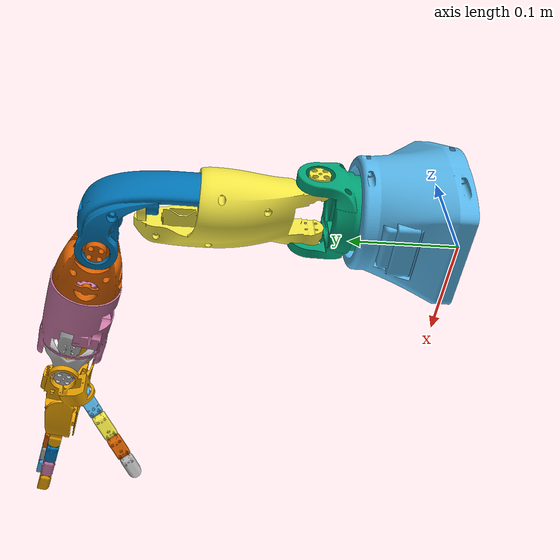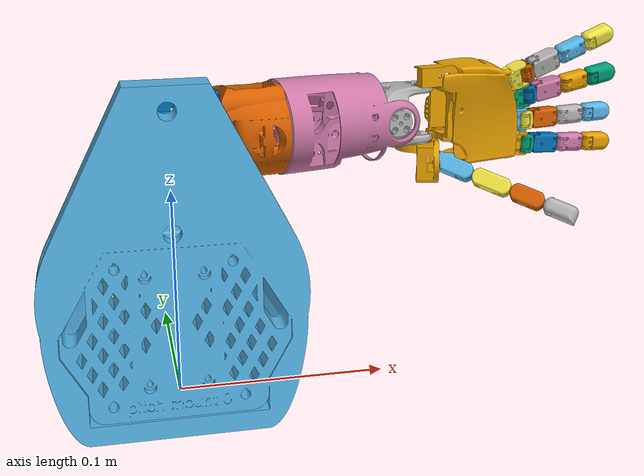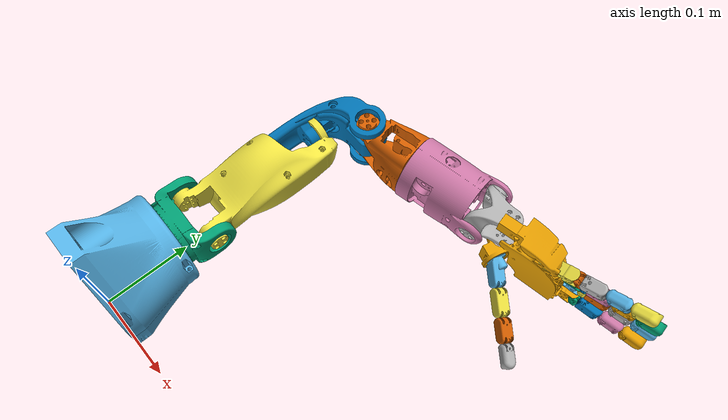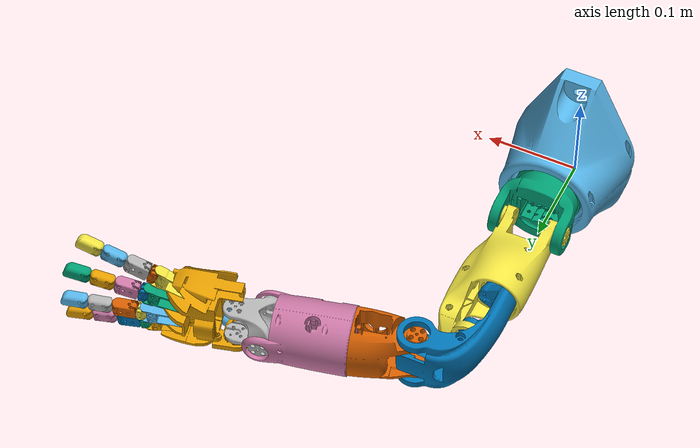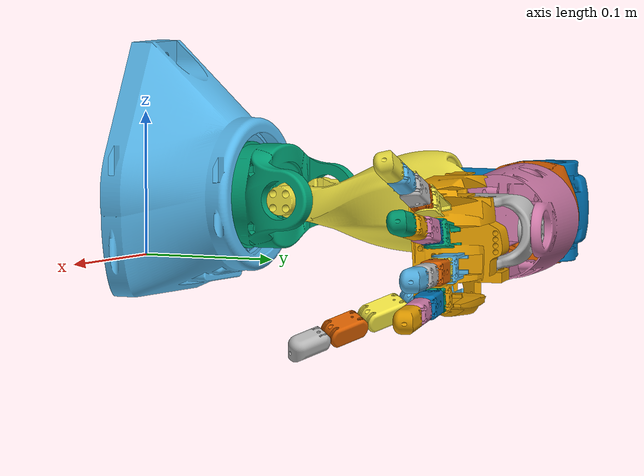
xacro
<?xml version="1.0"?>
<robot name="hopejr_right_arm_robot" xmlns:xacro="http://www.ros.org/wiki/xacro">
    <xacro:include filename="$(find hopejr_arm_description)/urdf/hopejr_arm.urdf.xacro"/>
    <xacro:include filename="$(find hopejr_hand_description)/urdf/hopejr_hand.urdf.xacro"/>

    <xacro:property name="prefix" value="hand_"/>
    <xacro:hopejr_hand_macro
        prefix="${prefix}"
        parent_link="forearm"
        scale="0.1"
    />

    <joint name="wrist_yaw" type="revolute">
        <parent link="forearm"/>
        <child link="${prefix}base_link"/>
        <origin xyz="0 0.00021 0.0917" rpy="0 ${-pi/2} 0"/>
        <axis xyz="0 0 1"/>
        <limit effort="10" velocity="1.0" lower="${-pi/18}" upper="${pi/18}" />
    </joint>
</robot>

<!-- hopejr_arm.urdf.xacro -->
<robot name="hopejr_arm" xmlns:xacro="http://www.ros.org/wiki/xacro">
    <xacro:macro name="hopejr_arm_macro" params="prefix parent_link xyz rpy">

        <link name="${prefix}base_link">
            <visual>
                <origin xyz="0 0 0" rpy="${pi/180*0} 0 0"/>
                <geometry>
                    <mesh filename="package://hopejr_arm_description/meshes/visual/base_link.dae" scale="1 1 1"/>
                </geometry>
            </visual>
            <collision>
                <origin xyz="0 0 0" rpy="0 0 0"/>
                <geometry>
                    <mesh filename="package://hopejr_arm_description/meshes/collision/base_link.stl" scale="1 1 1"/>
                </geometry>
            </collision>
            <inertial>
                <origin xyz="-0.02 0 0.028" rpy="0 0 0"/>
                <mass value="1.260139"/>
                <inertia ixx="0.003444" ixy="0.000000060725" ixz="0.000000223974" iyy="0.003173" iyz="0.0003306" izz="0.002316"/>
            </inertial>
        </link>

        <joint name="${prefix}base_link_fixed" type="fixed">
            <parent link="${parent_link}"/>
            <child link="${prefix}base_link"/>
            <origin xyz="${xyz}" rpy="${rpy}"/>
        </joint>

        <link name="${prefix}shoulder_yaw">
            <visual>
                <origin xyz="0 0 0" rpy="0 0 0"/>
                <geometry>
                    <mesh filename="package://hopejr_arm_description/meshes/visual/shoulder_yaw.dae" scale="1 1 1"/>
                </geometry>
            </visual>
            <collision>
                <origin xyz="0 0 0" rpy="0 0 0"/>
                <geometry>
                    <mesh filename="package://hopejr_arm_description/meshes/collision/shoulder_yaw.stl" scale="1 1 1"/>
                </geometry>
            </collision>
            <inertial>
                <origin xyz="0 0 0" rpy="0 0 0"/>
                <mass value="0.252213"/>
                <inertia ixx="0.0001227" ixy="0.000000629536" ixz="-0.000000333468" iyy="0.0001678" iyz="-0.000000674054" izz="0.0001553"/>
            </inertial>
        </link>

        <joint name="${prefix}shoulder_pitch" type="continuous">
            <parent link="${prefix}base_link"/>
            <child link="${prefix}shoulder_yaw"/>
            <origin xyz="0 0.07106 0.04453" rpy="0 0 0"/>
            <axis xyz="0 1 0"/>
            <limit effort="10" velocity="1.0"/>
        </joint>

        <link name="${prefix}shoulder_roll">
            <visual>
                <origin xyz="0 0 0" rpy="0 0 0"/>
                <geometry>
                    <mesh filename="package://hopejr_arm_description/meshes/visual/shoulder_roll.dae" scale="1 1 1"/>
                </geometry>
            </visual>
            <collision>
                <origin xyz="0 0 0" rpy="0 0 0"/>
                <geometry>
                    <mesh filename="package://hopejr_arm_description/meshes/collision/shoulder_roll.stl" scale="1 1 1"/>
                </geometry>
            </collision>
            <inertial>
                <origin xyz="-0.02 0 0.028" rpy="0 0 0"/>
                <mass value="0.422614"/>
                <inertia ixx="0.0006959" ixy="0.000006134701" ixz="-0.000083430347" iyy="0.0007655" iyz="0.000025066263" izz="0.0002446"/>
            </inertial>
        </link>

        <joint name="${prefix}shoulder_yaw" type="revolute"> <parent link="${prefix}shoulder_yaw"/>
            <child link="${prefix}shoulder_roll"/>
            <origin xyz="0 0.05585 0" rpy="${-pi/2} 0 0"/>
            <axis xyz="1 0 0"/>
            <limit effort="10" velocity="1.0" lower="-1.71" upper="1.681" />
        </joint>

        <link name="${prefix}upper_elbow">
            <visual>
                <origin xyz="0 0 0" rpy="0 0 0"/>
                <geometry>
                    <mesh filename="package://hopejr_arm_description/meshes/visual/upper_elbow.dae" scale="1 1 1"/>
                </geometry>
            </visual>
            <collision>
                <origin xyz="0 0 0" rpy="0 0 0"/>
                <geometry>
                    <mesh filename="package://hopejr_arm_description/meshes/collision/upper_elbow.stl" scale="1 1 1"/>
                </geometry>
            </collision>
            <inertial>
                <origin xyz="-0.02 0 0.028" rpy="0 0 0"/>
                <mass value="0.243803"/>
                <inertia ixx="0.0003227" ixy="-0.000000062111" ixz="-0.0001214" iyy="0.0003959" iyz="-0.000000048168" izz="0.0001746"/>
            </inertial>
        </link>

        <joint name="${prefix}shoulder_roll" type="revolute"> <parent link="${prefix}shoulder_roll"/>
            <child link="${prefix}upper_elbow"/>
            <origin xyz="0 0 0.0884" rpy="0 0 0"/>
            <axis xyz="0 0 1"/>
            <limit effort="10" velocity="1.0" lower="-1.172" upper="1.172" />
        </joint>

        <link name="${prefix}lower_elbow">
            <visual>
                <origin xyz="0 0 0" rpy="0 0 0"/>
                <geometry>
                    <mesh filename="package://hopejr_arm_description/meshes/visual/lower_elbow.dae" scale="1 1 1"/>
                </geometry>
            </visual>
            <collision>
                <origin xyz="0 0 0" rpy="0 0 0"/>
                <geometry>
                    <mesh filename="package://hopejr_arm_description/meshes/collision/lower_elbow.stl" scale="1 1 1"/>
                </geometry>
            </collision>
            <inertial>
                <origin xyz="-0.02 0 0.028" rpy="0 0 0"/>
                <mass value="0.1882"/>
                <inertia ixx="0.0001196" ixy="0.000002288885" ixz="0.000001137302" iyy="0.000096307138" iyz="0.000003223544" izz="0.0001047"/>
            </inertial>
        </link>

        <joint name="${prefix}elbow_flex" type="revolute">
            <parent link="${prefix}upper_elbow"/>
            <child link="${prefix}lower_elbow"/>
            <origin xyz="0.03765 0 0.11311" rpy="0 0 0"/>
            <axis xyz="0 -1 0"/>
            <limit effort="10" velocity="1.0" lower="-2.53" upper="-0.16" />
        </joint>

        <link name="${prefix}forearm">
            <visual>
                <origin xyz="0 0 0" rpy="0 0 0"/>
                <geometry>
                    <mesh filename="package://hopejr_arm_description/meshes/visual/forearm.dae" scale="1 1 1"/>
                </geometry>
            </visual>
            <collision>
                <origin xyz="0 0 0" rpy="0 0 0"/>
                <geometry>
                    <mesh filename="package://hopejr_arm_description/meshes/collision/forearm.stl" scale="1 1 1"/>
                </geometry>
            </collision>
            <inertial>
                <origin xyz="-0.02 0 0.028" rpy="0 0 0"/>
                <mass value="0.208355"/>
                <inertia ixx="0.0002051" ixy="0.000000044894" ixz="-0.000004226706" iyy="0.0002222" iyz="-0.000002431512" izz="0.0001122"/>
            </inertial>
        </link>

        <joint name="${prefix}wrist_roll" type="revolute">
            <parent link="${prefix}lower_elbow"/>
            <child link="${prefix}forearm"/>
            <origin xyz="0 0 0.06325" rpy="0 0 0"/>
            <axis xyz="0 0 -1"/>
            <limit effort="10" velocity="1.0" lower="${-pi/4}" upper="${pi/18*21}" />
        </joint>

    </xacro:macro>

    <link name="base_footprint"/>
    <xacro:hopejr_arm_macro
        prefix=""
        parent_link="base_footprint"
        xyz="0 0 0"
        rpy="0 0 0"
    />

</robot>

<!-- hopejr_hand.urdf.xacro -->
<robot name="hopejr_hand" xmlns:xacro="http://www.ros.org/wiki/xacro">

    <xacro:macro name="hopejr_hand_macro" params="prefix parent_link scale">

        <xacro:include filename="$(find hopejr_hand_description)/urdf/macros.xacro" />

        <link name="${prefix}base_link">
            <visual>
                <origin xyz="0 0 0" rpy="${pi/180*0} 0 0"/>
                <geometry>
                    <mesh filename="package://hopejr_hand_description/meshes/visual/base_link.dae" scale="${scale} ${scale} ${scale}"/>
                </geometry>
            </visual>
            <collision>
                <origin xyz="0 0 0" rpy="0 0 0"/>
                <geometry>
                    <mesh filename="package://hopejr_hand_description/meshes/collision/base_link.stl" scale="${scale} ${scale} ${scale}"/>
                </geometry>
            </collision>
            <inertial>
                <origin xyz="-0.02 0 0.028" rpy="0 0 0"/>
                <mass value="0.03323"/>
                <inertia ixx="0.000018824494" ixy="-0.000000571474" ixz="-0.000000041098" iyy="0.00001505929" iyz="0.000000023636" izz="0.000013661405"/>
            </inertial>
        </link>

        <link name="${prefix}hand">
            <visual>
                <origin xyz="0 0 0" rpy="0 0 0"/>
                <geometry>
                    <mesh filename="package://hopejr_hand_description/meshes/visual/hand.dae" scale="${scale} ${scale} ${scale}"/>
                </geometry>
            </visual>
            <collision>
                <origin xyz="0 0 0" rpy="0 0 0"/>
                <geometry>
                    <mesh filename="package://hopejr_hand_description/meshes/collision/hand.stl" scale="${scale} ${scale} ${scale}"/>
                </geometry>
            </collision>
            <inertial>
                <origin xyz="0 0 0" rpy="0 0 0"/>
                <mass value="0.252893"/>
                <inertia ixx="0.0002839" ixy="0.000003336317" ixz="0.000004077546" iyy="0.0001891" iyz="0.000000331897" izz="0.0001469"/>
            </inertial>
        </link>

        <joint name="${prefix}wrist_pitch" type="revolute">
            <parent link="${prefix}base_link"/>
            <child link="${prefix}hand"/>
            <origin xyz="${0.29887*scale} ${0.07923*scale} 0" rpy="0 ${pi/2} 0"/>
            <axis xyz="0 1 0"/>
            <limit effort="10" velocity="1.0" lower="${-pi/180*75}" upper="${pi/180*80}" />
        </joint>

        <link name="${prefix}thumb_mcp_2">
            <visual>
                <origin xyz="0 0 0" rpy="0 0 0"/>
                <geometry>
                    <mesh filename="package://hopejr_hand_description/meshes/visual/thumb_mcp_2.dae" scale="${scale} ${scale} ${scale}"/>
                </geometry>
            </visual>
            <collision>
                <origin xyz="0 0 0" rpy="0 0 0"/>
                <geometry>
                    <mesh filename="package://hopejr_hand_description/meshes/collision/thumb_mcp_2.stl" scale="${scale} ${scale} ${scale}"/>
                </geometry>
            </collision>
            <inertial>
                <origin xyz="0 0 0" rpy="0 0 0"/>
                <mass value="0.008776"/>
                <inertia ixx="0.000000783215" ixy="0.000000007992" ixz="0.000000266897" iyy="0.000000932685" iyz="-0.000000055174" izz="0.000000534905"/>
            </inertial>
        </link>

        <joint name="${prefix}thumb_mcp_2" type="revolute">
            <parent link="${prefix}hand"/>
            <child link="${prefix}thumb_mcp_2"/>
            <origin xyz="${0.19772*scale} ${0.28618*scale} ${0.058046*scale}" rpy="${pi/180*156} ${pi/180*11} ${-pi/180*67}"/>
            <axis xyz="0 0 1"/>
            <limit effort="10" velocity="1.0" lower="-3" upper="-0.043" />
        </joint>

        <link name="${prefix}thumb_pip_1_support">
            <inertial>
                <origin xyz="0 0 0" rpy="0 0 0"/>
                <mass value="0.0000000000001"/>
                <inertia ixx="0.00000000000001" ixy="0" ixz="0" iyy="0.00000000000001" iyz="0" izz="0.00000000000001"/>
            </inertial>
        </link>

        <joint name="${prefix}thumb_pip_1_support" type="revolute">
            <parent link="${prefix}thumb_mcp_2"/>
            <child link="${prefix}thumb_pip_1_support"/>
            <origin xyz="${0.1180315*scale} ${-0.0121475*scale} ${-0.229186*scale}" rpy="${-pi/180*157.5} ${pi/180*64.13} ${-pi/180*20.774}"/>
            <axis xyz="0 -1 0"/>
            <limit effort="10" velocity="1.0" lower="0" upper="${pi/180*67.5}" />
            <mimic joint="${prefix}thumb_pip_1"/> </joint>

        <link name="${prefix}thumb_pip_1">
            <visual>
                <origin xyz="0 0 0" rpy="0 0 0"/>
                <geometry>
                    <mesh filename="package://hopejr_hand_description/meshes/visual/thumb_pip_1.dae" scale="${scale} ${scale} ${scale}"/>
                </geometry>
            </visual>
            <collision>
                <origin xyz="0 0 0" rpy="0 0 0"/>
                <geometry>
                    <mesh filename="package://hopejr_hand_description/meshes/collision/thumb_pip_1.stl" scale="${scale} ${scale} ${scale}"/>
                </geometry>
            </collision>
            <inertial>
                <origin xyz="0 0 0" rpy="0 0 0"/>
                <mass value="0.007142"/>
                <inertia ixx="0.000000233324" ixy="-0.000000000007" ixz="0.00000000023" iyy="0.000000597862" iyz="0.000000000054" izz="0.000000638412"/>
            </inertial>
        </link>

        <joint name="${prefix}thumb_pip_1" type="revolute">
            <parent link="${prefix}thumb_pip_1_support"/>
            <child link="${prefix}thumb_pip_1"/>
            <origin xyz="${0.152*scale} 0 0" rpy="0 0 0"/>
            <axis xyz="0 -1 0"/>
            <limit effort="10" velocity="1.0" lower="0" upper="${pi/180*67.5}" />
        </joint>

        <link name="${prefix}thumb_pip_2_support">
            <inertial>
                <origin xyz="0 0 0" rpy="0 0 0"/>
                <mass value="0.0000000000001"/>
                <inertia ixx="0.00000000000001" ixy="0" ixz="0" iyy="0.00000000000001" iyz="0" izz="0.00000000000001"/>
            </inertial>
        </link>

        <joint name="${prefix}thumb_pip_2_support" type="revolute">
            <parent link="${prefix}thumb_pip_1"/>
            <child link="${prefix}thumb_pip_2_support"/>
            <origin xyz="${0.168*scale} 0 0" rpy="0 0 0"/>
            <axis xyz="0 -1 0"/>
            <limit effort="10" velocity="1.0" lower="0" upper="${pi/180*67.5}" />
            <mimic joint="${prefix}thumb_pip_2"/> </joint>

        <link name="${prefix}thumb_pip_2">
            <visual>
                <origin xyz="0 0 0" rpy="0 0 0"/>
                <geometry>
                    <mesh filename="package://hopejr_hand_description/meshes/visual/thumb_pip_2.dae" scale="${scale} ${scale} ${scale}"/>
                </geometry>
            </visual>
            <collision>
                <origin xyz="0 0 0" rpy="0 0 0"/>
                <geometry>
                    <mesh filename="package://hopejr_hand_description/meshes/collision/thumb_pip_2.stl" scale="${scale} ${scale} ${scale}"/>
                </geometry>
            </collision>
            <inertial>
                <origin xyz="0 0 0" rpy="0 0 0"/>
                <mass value="0.006089"/>
                <inertia ixx="0.000000197597" ixy="-0.000000000005" ixz="0.00000000043" iyy="0.000000404632" iyz="0.000000000054" izz="0.000000440963"/>
            </inertial>
        </link>

        <joint name="${prefix}thumb_pip_2" type="revolute">
            <parent link="${prefix}thumb_pip_2_support"/>
            <child link="${prefix}thumb_pip_2"/>
            <origin xyz="${0.152*scale} 0 0" rpy="0 0 0"/>
            <axis xyz="0 -1 0"/>
            <limit effort="10" velocity="1.0" lower="0" upper="${pi/180*67.5}" />
        </joint>

        <link name="${prefix}thumb_dip_support">
            <inertial>
                <origin xyz="0 0 0" rpy="0 0 0"/>
                <mass value="0.0000000000001"/>
                <inertia ixx="0.00000000000001" ixy="0" ixz="0" iyy="0.00000000000001" iyz="0" izz="0.00000000000001"/>
            </inertial>
        </link>

        <joint name="${prefix}thumb_dip_support" type="revolute">
            <parent link="${prefix}thumb_pip_2"/>
            <child link="${prefix}thumb_dip_support"/>
            <origin xyz="${0.128*scale} 0 0" rpy="0 0 0"/>
            <axis xyz="0 -1 0"/>
            <limit effort="10" velocity="1.0" lower="0" upper="${pi/180*67.5}" />
            <mimic joint="${prefix}thumb_dip"/> </joint>

        <link name="${prefix}thumb_dip">
            <visual>
                <origin xyz="0 0 0" rpy="0 0 0"/>
                <geometry>
                    <mesh filename="package://hopejr_hand_description/meshes/visual/thumb_dip.dae" scale="${scale} ${scale} ${scale}"/>
                </geometry>
            </visual>
            <collision>
                <origin xyz="0 0 0" rpy="0 0 0"/>
                <geometry>
                    <mesh filename="package://hopejr_hand_description/meshes/collision/thumb_dip.stl" scale="${scale} ${scale} ${scale}"/>
                </geometry>
            </collision>
            <inertial>
                <origin xyz="0 0 0" rpy="0 0 0"/>
                <mass value="0.005429"/>
                <inertia ixx="0.000000155671" ixy="0.000000000024" ixz="0.000000002166" iyy="0.00000033961" iyz="0.000000000002" izz="0.000000357923"/>
            </inertial>
        </link>

        <joint name="${prefix}thumb_dip" type="revolute">
            <parent link="${prefix}thumb_dip_support"/>
            <child link="${prefix}thumb_dip"/>
            <origin xyz="${0.152*scale} 0 0" rpy="0 0 0"/>
            <axis xyz="0 -1 0"/>
            <limit effort="10" velocity="1.0" lower="0" upper="${pi/180*67.5}" />
        </joint>

        <xacro:create_finger
            name="${prefix}index"
            mcp1_xyz="${0.071613*scale} ${0.25677*scale} ${0.85375*scale}"
            mcp1_rpy="${-pi/180*88.779} ${-pi/180*84.983} ${pi/180*89.385}"
            hand_link="${prefix}hand"
            scale="${scale}"/>

        <xacro:create_finger
            name="${prefix}middle"
            mcp1_xyz="${0.024581*scale} ${0.077754*scale} ${0.87322*scale}"
            mcp1_rpy="${-pi/180*79.515} ${-pi/180*89.706} ${pi/180*80.164}"
            hand_link="${prefix}hand"
            scale="${scale}"/>

        <xacro:create_finger
            name="${prefix}ring"
            mcp1_xyz="${0.085778*scale} ${-0.13244*scale} ${0.8552*scale}"
            mcp1_rpy="${-pi/180*93.801} ${-pi/180*99.155} ${pi/180*101.17}"
            hand_link="${prefix}hand"
            scale="${scale}"/>

        <xacro:create_finger
            name="${prefix}pinky"
            mcp1_xyz="${0.16965*scale} ${-0.31494*scale} ${0.77426*scale}"
            mcp1_rpy="${-pi/180*88.255} ${-pi/180*110.35} ${pi/180*100.84}"
            hand_link="${prefix}hand"
            scale="${scale}"/>

    </xacro:macro>

</robot>

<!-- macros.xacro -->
<robot xmlns:xacro="http://www.ros.org/wiki/xacro">

    <xacro:macro name="create_finger" params="name mcp1_xyz mcp1_rpy hand_link scale">

        <link name="${name}_mcp_1">
            <visual>
                <origin xyz="0 0 0" rpy="0 0 0"/>
                <geometry>
                    <mesh filename="package://hopejr_hand_description/meshes/visual/mcp_1.dae" scale="${scale} ${scale} ${scale}"/>
                </geometry>
            </visual>
            <collision>
                <origin xyz="0 0 0" rpy="0 0 0"/>
                <geometry>
                    <mesh filename="package://hopejr_hand_description/meshes/collision/mcp_1.stl" scale="${scale} ${scale} ${scale}"/>
                </geometry>
            </collision>
            <inertial>
                <origin xyz="0 0 0" rpy="0 0 0"/>
                <mass value="0.004836"/>
                <inertia ixx="0.000000235908" ixy="-0.000000006556" ixz="0.000000001806" iyy="0.000000740439" iyz="0.000000000035" izz="0.000000830731"/>
            </inertial>
        </link>

        <joint name="${name}_mcp_1" type="fixed">
            <parent link="${hand_link}"/>
            <child link="${name}_mcp_1"/>
            <origin xyz="${mcp1_xyz}" rpy="${mcp1_rpy}"/>
            <axis xyz="0 1 0"/>
        </joint>

        <link name="${name}_mcp_2_support">
            <inertial>
                <origin xyz="0 0 0" rpy="0 0 0"/>
                <mass value="0.0000000000001"/>
                <inertia ixx="0.00000000000001" ixy="0" ixz="0" iyy="0.00000000000001" iyz="0" izz="0.00000000000001"/>
            </inertial>
        </link>

        <joint name="${name}_mcp_2_support" type="revolute">
            <parent link="${name}_mcp_1"/>
            <child link="${name}_mcp_2_support"/>
            <origin xyz="0 0 0" rpy="0 0 0"/>
            <axis xyz="0 1 0"/>
            <limit effort="10" velocity="1.0" lower="0" upper="${pi/180*67.5}" />
            <mimic joint="${name}_mcp_2"/>
        </joint>

        <link name="${name}_mcp_2">
            <visual>
                <origin xyz="0 0 0" rpy="0 0 0"/>
                <geometry>
                    <mesh filename="package://hopejr_hand_description/meshes/visual/mcp_2.dae" scale="${scale} ${scale} ${scale}"/>
                </geometry>
            </visual>
            <collision>
                <origin xyz="0 0 0" rpy="0 0 0"/>
                <geometry>
                    <mesh filename="package://hopejr_hand_description/meshes/collision/mcp_2.stl" scale="${scale} ${scale} ${scale}"/>
                </geometry>
            </collision>
            <inertial>
                <origin xyz="0 0 0" rpy="0 0 0"/>
                <mass value="0.001654"/>
                <inertia ixx="0.000000049479" ixy="0.000000000263" ixz="0.000000000299" iyy="0.000000032432" iyz="0.000000000057" izz="0.000000038462"/>
            </inertial>
        </link>

        <joint name="${name}_mcp_2" type="revolute">
            <parent link="${name}_mcp_2_support"/>
            <child link="${name}_mcp_2"/>
            <origin xyz="${0.152*scale} 0 0" rpy="0 0 0"/>
            <axis xyz="0 1 0"/>
            <limit effort="10" velocity="1.0" lower="0" upper="${pi/180*67.5}" />
        </joint>

        <link name="${name}_pip_support">
            <inertial>
                <origin xyz="0 0 0" rpy="0 0 0"/>
                <mass value="0.0000000000001"/>
                <inertia ixx="0.00000000000001" ixy="0" ixz="0" iyy="0.00000000000001" iyz="0" izz="0.00000000000001"/>
            </inertial>
        </link>

        <joint name="${name}_pip_support" type="revolute">
            <parent link="${name}_mcp_2"/>
            <child link="${name}_pip_support"/>
            <origin xyz="${-0.195135*scale} 0 0" rpy="0 0 0"/>
            <axis xyz="0 0 1"/>
            <limit effort="10" velocity="1.0" lower="${-pi/180*23.8}" upper="${pi/180*23.8}" />
            <mimic joint="${name}_pip"/>
        </joint>

        <link name="${name}_pip">
            <visual>
                <origin xyz="0 0 0" rpy="0 0 0"/>
                <geometry>
                    <mesh filename="package://hopejr_hand_description/meshes/visual/pip.dae" scale="${scale} ${scale} ${scale}"/>
                </geometry>
            </visual>
            <collision>
                <origin xyz="0 0 0" rpy="0 0 0"/>
                <geometry>
                    <mesh filename="package://hopejr_hand_description/meshes/collision/pip.stl" scale="${scale} ${scale} ${scale}"/>
                </geometry>
            </collision>
            <inertial>
                <origin xyz="0 0 0" rpy="0 0 0"/>
                <mass value="0.005708"/>
                <inertia ixx="0.00000018835" ixy="0.00000001165" ixz="0.000000000165" iyy="0.000000372084" iyz="-0.000000000039" izz="0.00000039757"/>
            </inertial>
        </link>

        <joint name="${name}_pip" type="revolute">
            <parent link="${name}_pip_support"/>
            <child link="${name}_pip"/>
            <origin xyz="${0.435*scale} 0 0" rpy="0 0 0"/>
            <axis xyz="0 0 1"/>
            <limit effort="10" velocity="1.0" lower="${-pi/180*23.8}" upper="${pi/180*23.8}" />
        </joint>

        <link name="${name}_dip_1_support">
            <inertial>
                <origin xyz="0 0 0" rpy="0 0 0"/>
                <mass value="0.0000000000001"/>
                <inertia ixx="0.00000000000001" ixy="0" ixz="0" iyy="0.00000000000001" iyz="0" izz="0.00000000000001"/>
            </inertial>
        </link>

        <joint name="${name}_dip_1_support" type="revolute">
            <parent link="${name}_pip"/>
            <child link="${name}_dip_1_support"/>
            <origin xyz="${-0.029132*scale} 0 0" rpy="0 0 0"/>
            <axis xyz="0 1 0"/>
            <limit effort="10" velocity="1.0" lower="0" upper="${pi/180*67.5}" />
            <mimic joint="${name}_dip_1"/>
        </joint>

        <link name="${name}_dip_1">
            <visual>
                <origin xyz="0 0 0" rpy="0 0 0"/>
                <geometry>
                    <mesh filename="package://hopejr_hand_description/meshes/visual/dip_1.dae" scale="${scale} ${scale} ${scale}"/>
                </geometry>
            </visual>
            <collision>
                <origin xyz="0 0 0" rpy="0 0 0"/>
                <geometry>
                    <mesh filename="package://hopejr_hand_description/meshes/collision/dip_1.stl" scale="${scale} ${scale} ${scale}"/>
                </geometry>
            </collision>
            <inertial>
                <origin xyz="0 0 0" rpy="0 0 0"/>
                <mass value="0.005093"/>
                <inertia ixx="0.000000143621" ixy="-0.00000000003" ixz="0.000000000091" iyy="0.000000290288" iyz="-0.000000000079" izz="0.000000314107"/>
            </inertial>
        </link>

        <joint name="${name}_dip_1" type="revolute">
            <parent link="${name}_dip_1_support"/>
            <child link="${name}_dip_1"/>
            <origin xyz="${0.152*scale} 0 0" rpy="0 0 0"/>
            <axis xyz="0 1 0"/>
            <limit effort="10" velocity="1.0" lower="0" upper="${pi/180*67.5}" />
        </joint>

        <link name="${name}_dip_2_support">
            <inertial>
                <origin xyz="0 0 0" rpy="0 0 0"/>
                <mass value="0.0000000000001"/>
                <inertia ixx="0.00000000000001" ixy="0" ixz="0" iyy="0.00000000000001" iyz="0" izz="0.00000000000001"/>
            </inertial>
        </link>

        <joint name="${name}_dip_2_support" type="revolute">
            <parent link="${name}_dip_1"/>
            <child link="${name}_dip_2_support"/>
            <origin xyz="${0.106*scale} 0 0" rpy="0 0 0"/>
            <axis xyz="0 1 0"/>
            <limit effort="10" velocity="1.0" lower="0" upper="${pi/180*67.5}" />
            <mimic joint="${name}_dip_2"/>
        </joint>

        <link name="${name}_dip_2">
            <visual>
                <origin xyz="0 0 0" rpy="0 0 0"/>
                <geometry>
                    <mesh filename="package://hopejr_hand_description/meshes/visual/dip_2.dae" scale="${scale} ${scale} ${scale}"/>
                </geometry>
            </visual>
            <collision>
                <origin xyz="0 0 0" rpy="0 0 0"/>
                <geometry>
                    <mesh filename="package://hopejr_hand_description/meshes/collision/dip_2.stl" scale="${scale} ${scale} ${scale}"/>
                </geometry>
            </collision>
            <inertial>
                <origin xyz="0 0 0" rpy="0 0 0"/>
                <mass value="0.005429"/>
                <inertia ixx="0.000000155634" ixy="0.000000000003" ixz="-0.000000002159" iyy="0.000000339577" iyz="-0.000000000002" izz="0.000000357884"/>
            </inertial>
        </link>

        <joint name="${name}_dip_2" type="revolute">
            <parent link="${name}_dip_2_support"/>
            <child link="${name}_dip_2"/>
            <origin xyz="${0.152*scale} 0 0" rpy="0 0 0"/>
            <axis xyz="0 1 0"/>
            <limit effort="10" velocity="1.0" lower="0" upper="${pi/180*67.5}" />
            <mimic joint="${name}_dip_1" multiplier="0.8" offset="0"/>
        </joint>

    </xacro:macro>
</robot>
